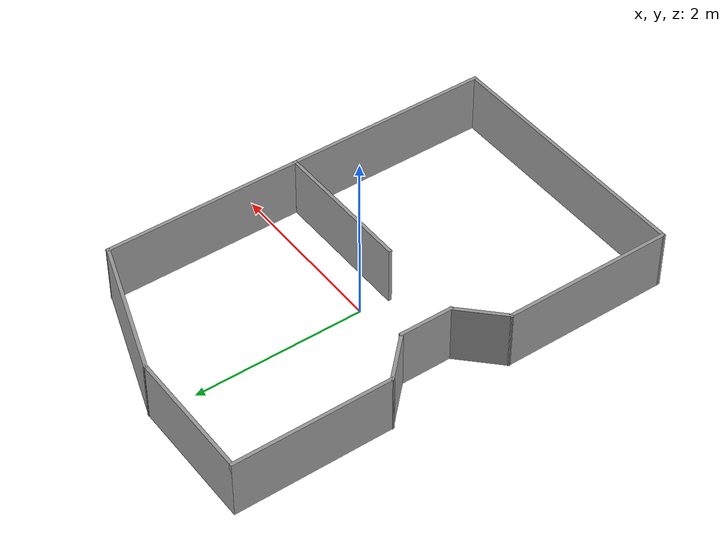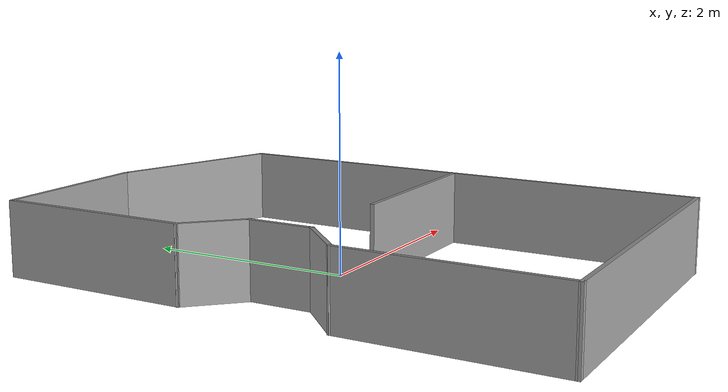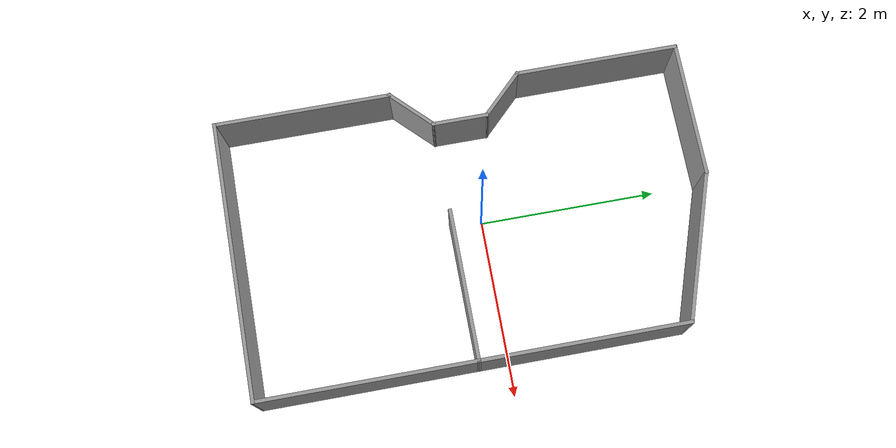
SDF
<?xml version='1.0'?>
<sdf version='1.6'>
  <model name='oldRIF_maze'>
    <pose frame=''>0.085961 -0.12394 0 0 -0 0</pose>
    <link name='Wall_12'>
      <collision name='Wall_12_Collision'>
        <geometry>
          <box>
            <size>1.70169 0.04 0.7</size>
          </box>
        </geometry>
        <pose frame=''>0 0 0.35 0 -0 0</pose>
      </collision>
      <visual name='Wall_12_Visual'>
        <pose frame=''>0 0 0.35 0 -0 0</pose>
        <geometry>
          <box>
            <size>1.70169 0.04 0.7</size>
          </box>
        </geometry>
        <material>
          <script>
            <uri>file://media/materials/scripts/gazebo.material</uri>
            <name>Gazebo/Grey</name>
          </script>
          <ambient>1 1 1 1</ambient>
        </material>
        <meta>
          <layer>0</layer>
        </meta>
      </visual>
      <pose frame=''>0.721215 -0.217741 0 0 -0 0.006838</pose>
    </link>
    <link name='Wall_14'>
      <collision name='Wall_14_Collision'>
        <geometry>
          <box>
            <size>2.42885 0.04 0.7</size>
          </box>
        </geometry>
        <pose frame=''>0 0 0.35 0 -0 0</pose>
      </collision>
      <visual name='Wall_14_Visual'>
        <pose frame=''>0 0 0.35 0 -0 0</pose>
        <geometry>
          <box>
            <size>2.42885 0.04 0.7</size>
          </box>
        </geometry>
        <material>
          <script>
            <uri>file://media/materials/scripts/gazebo.material</uri>
            <name>Gazebo/Grey</name>
          </script>
          <ambient>1 1 1 1</ambient>
        </material>
        <meta>
          <layer>0</layer>
        </meta>
      </visual>
      <pose frame=''>1.55204 -1.40606 0 0 -0 -1.5708</pose>
    </link>
    <link name='Wall_16'>
      <collision name='Wall_16_Collision'>
        <geometry>
          <box>
            <size>3.14099 0.04 0.7</size>
          </box>
        </geometry>
        <pose frame=''>0 0 0.35 0 -0 0</pose>
      </collision>
      <visual name='Wall_16_Visual'>
        <pose frame=''>0 0 0.35 0 -0 0</pose>
        <geometry>
          <box>
            <size>3.14099 0.04 0.7</size>
          </box>
        </geometry>
        <material>
          <script>
            <uri>file://media/materials/scripts/gazebo.material</uri>
            <name>Gazebo/Grey</name>
          </script>
          <ambient>1 1 1 1</ambient>
        </material>
        <meta>
          <layer>0</layer>
        </meta>
      </visual>
      <pose frame=''>0.001539 -2.60956 0 0 -0 -3.13547</pose>
    </link>
    <link name='Wall_18'>
      <collision name='Wall_18_Collision'>
        <geometry>
          <box>
            <size>2.00544 0.04 0.7</size>
          </box>
        </geometry>
        <pose frame=''>0 0 0.35 0 -0 0</pose>
      </collision>
      <visual name='Wall_18_Visual'>
        <pose frame=''>0 0 0.35 0 -0 0</pose>
        <geometry>
          <box>
            <size>2.00544 0.04 0.7</size>
          </box>
        </geometry>
        <material>
          <script>
            <uri>file://media/materials/scripts/gazebo.material</uri>
            <name>Gazebo/Grey</name>
          </script>
          <ambient>1 1 1 1</ambient>
        </material>
        <meta>
          <layer>0</layer>
        </meta>
      </visual>
      <pose frame=''>-1.54896 -1.63656 0 0 -0 1.5708</pose>
    </link>
    <link name='Wall_20'>
      <collision name='Wall_20_Collision'>
        <geometry>
          <box>
            <size>0.64 0.04 0.7</size>
          </box>
        </geometry>
        <pose frame=''>0 0 0.35 0 -0 0</pose>
      </collision>
      <visual name='Wall_20_Visual'>
        <pose frame=''>0 0 0.35 0 -0 0</pose>
        <geometry>
          <box>
            <size>0.64 0.04 0.7</size>
          </box>
        </geometry>
        <material>
          <script>
            <uri>file://media/materials/scripts/gazebo.material</uri>
            <name>Gazebo/Grey</name>
          </script>
          <ambient>1 1 1 1</ambient>
        </material>
        <meta>
          <layer>0</layer>
        </meta>
      </visual>
      <pose frame=''>-1.33696 -0.44206 0 0 -0 0.785398</pose>
    </link>
    <link name='Wall_22'>
      <collision name='Wall_22_Collision'>
        <geometry>
          <box>
            <size>0.64 0.04 0.7</size>
          </box>
        </geometry>
        <pose frame=''>0 0 0.35 0 -0 0</pose>
      </collision>
      <visual name='Wall_22_Visual'>
        <pose frame=''>0 0 0.35 0 -0 0</pose>
        <geometry>
          <box>
            <size>0.64 0.04 0.7</size>
          </box>
        </geometry>
        <material>
          <script>
            <uri>file://media/materials/scripts/gazebo.material</uri>
            <name>Gazebo/Grey</name>
          </script>
          <ambient>1 1 1 1</ambient>
        </material>
        <meta>
          <layer>0</layer>
        </meta>
      </visual>
      <pose frame=''>-1.12496 0.06994 0 0 -0 1.5708</pose>
    </link>
    <link name='Wall_24'>
      <collision name='Wall_24_Collision'>
        <geometry>
          <box>
            <size>0.64 0.04 0.7</size>
          </box>
        </geometry>
        <pose frame=''>0 0 0.35 0 -0 0</pose>
      </collision>
      <visual name='Wall_24_Visual'>
        <pose frame=''>0 0 0.35 0 -0 0</pose>
        <geometry>
          <box>
            <size>0.64 0.04 0.7</size>
          </box>
        </geometry>
        <material>
          <script>
            <uri>file://media/materials/scripts/gazebo.material</uri>
            <name>Gazebo/Grey</name>
          </script>
          <ambient>1 1 1 1</ambient>
        </material>
        <meta>
          <layer>0</layer>
        </meta>
      </visual>
      <pose frame=''>-1.33696 0.58194 0 0 -0 2.35619</pose>
    </link>
    <link name='Wall_26'>
      <collision name='Wall_26_Collision'>
        <geometry>
          <box>
            <size>1.86 0.04 0.7</size>
          </box>
        </geometry>
        <pose frame=''>0 0 0.35 0 -0 0</pose>
      </collision>
      <visual name='Wall_26_Visual'>
        <pose frame=''>0 0 0.35 0 -0 0</pose>
        <geometry>
          <box>
            <size>1.86 0.04 0.7</size>
          </box>
        </geometry>
        <material>
          <script>
            <uri>file://media/materials/scripts/gazebo.material</uri>
            <name>Gazebo/Grey</name>
          </script>
          <ambient>1 1 1 1</ambient>
        </material>
        <meta>
          <layer>0</layer>
        </meta>
      </visual>
      <pose frame=''>-1.54896 1.70394 0 0 -0 1.5708</pose>
    </link>
    <link name='Wall_32'>
      <collision name='Wall_32_Collision'>
        <geometry>
          <box>
            <size>1.55 0.04 0.7</size>
          </box>
        </geometry>
        <pose frame=''>0 0 0.35 0 -0 0</pose>
      </collision>
      <visual name='Wall_32_Visual'>
        <pose frame=''>0 0 0.35 0 -0 0</pose>
        <geometry>
          <box>
            <size>1.55 0.04 0.7</size>
          </box>
        </geometry>
        <material>
          <script>
            <uri>file://media/materials/scripts/gazebo.material</uri>
            <name>Gazebo/Grey</name>
          </script>
          <ambient>1 1 1 1</ambient>
        </material>
        <meta>
          <layer>0</layer>
        </meta>
      </visual>
      <pose frame=''>-0.793961 2.61394 0 0 -0 0</pose>
    </link>
    <link name='Wall_35'>
      <collision name='Wall_35_Collision'>
        <geometry>
          <box>
            <size>2.33 0.04 0.7</size>
          </box>
        </geometry>
        <pose frame=''>0 0 0.35 0 -0 0</pose>
      </collision>
      <visual name='Wall_35_Visual'>
        <pose frame=''>0 0 0.35 0 -0 0</pose>
        <geometry>
          <box>
            <size>2.33 0.04 0.7</size>
          </box>
        </geometry>
        <material>
          <script>
            <uri>file://media/materials/scripts/gazebo.material</uri>
            <name>Gazebo/Grey</name>
          </script>
          <ambient>1 1 1 1</ambient>
        </material>
        <meta>
          <layer>0</layer>
        </meta>
      </visual>
      <pose frame=''>1.55204 0.93294 0 0 -0 1.5708</pose>
    </link>
    <link name='Wall_37'>
      <collision name='Wall_37_Collision'>
        <geometry>
          <box>
            <size>1.71886 0.04 0.7</size>
          </box>
        </geometry>
        <pose frame=''>0 0 0.35 0 -0 0</pose>
      </collision>
      <visual name='Wall_37_Visual'>
        <pose frame=''>0 0 0.35 0 -0 0</pose>
        <geometry>
          <box>
            <size>1.71886 0.04 0.7</size>
          </box>
        </geometry>
        <material>
          <script>
            <uri>file://media/materials/scripts/gazebo.material</uri>
            <name>Gazebo/Grey</name>
          </script>
          <ambient>1 1 1 1</ambient>
        </material>
        <meta>
          <layer>0</layer>
        </meta>
      </visual>
      <pose frame=''>0.756539 2.34594 0 0 -0 2.81664</pose>
    </link>
    <static>1</static>
  </model>
</sdf>
